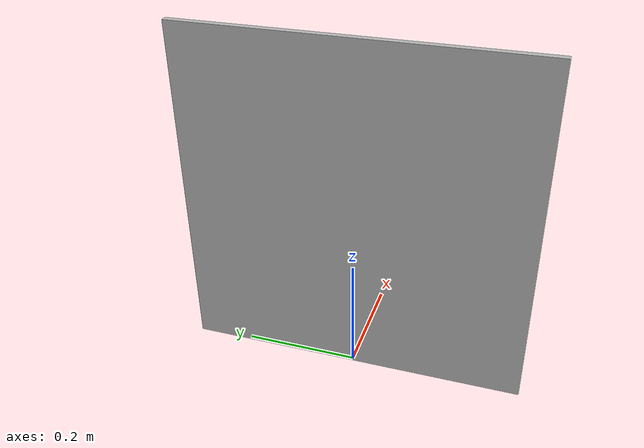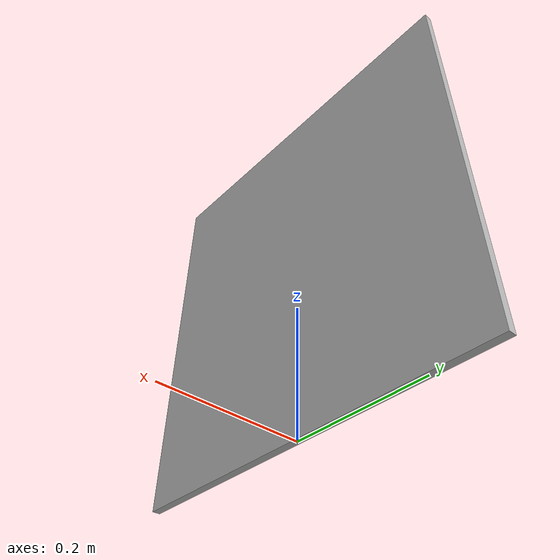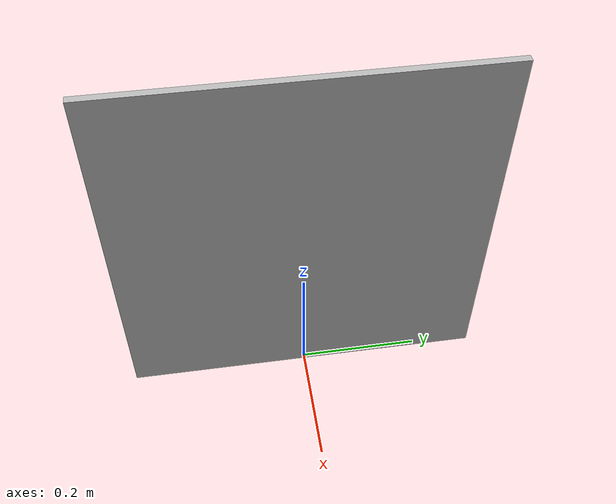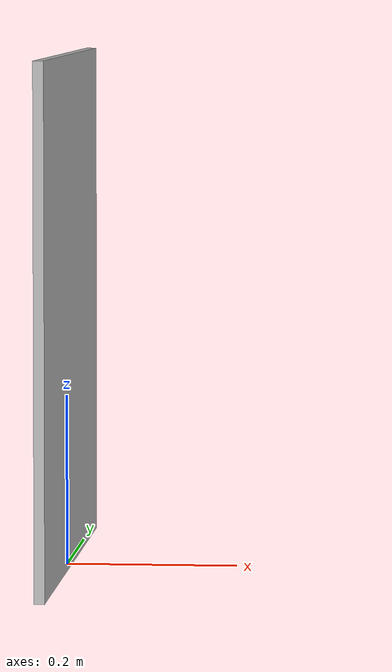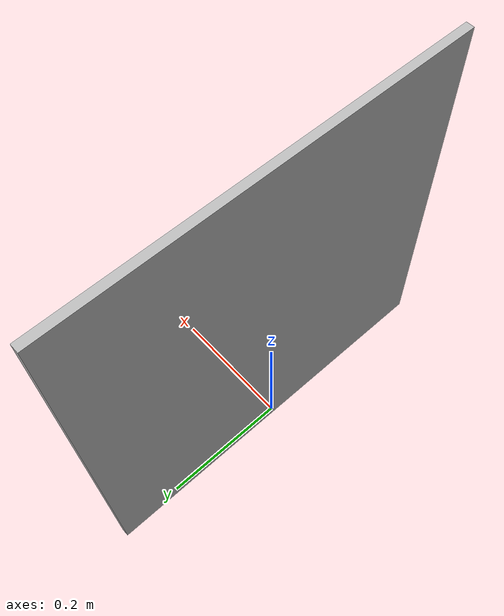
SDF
<?xml version="1.0" ?><sdf version="1.4">
  <model name="DICT_ARUCO_ORIGINAL_id1">
    <static>true</static>
    <link name="link">
      <visual name="visual">
        <geometry>
          <mesh>
            <uri>model://dict_aruco_original_id1/meshes/DICT_ARUCO_ORIGINAL_id1.dae</uri>
          <scale>1.2 1.2 1.2</scale></mesh>
        </geometry>
      </visual>
    </link>
  </model>
</sdf>
